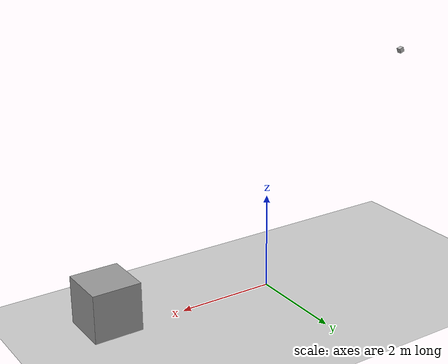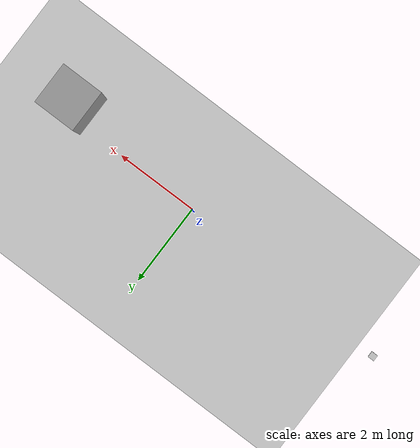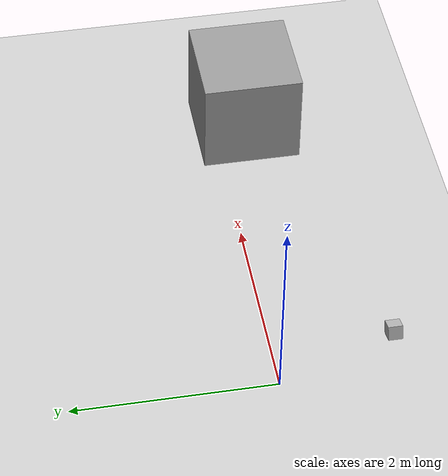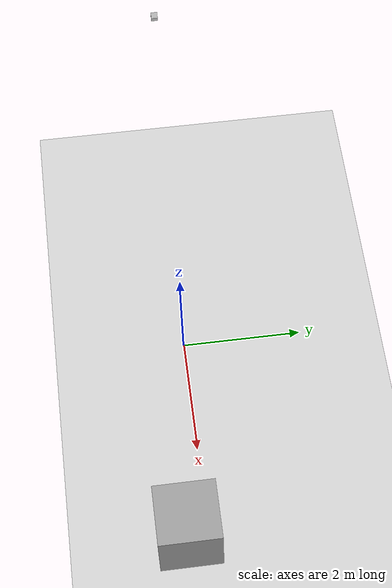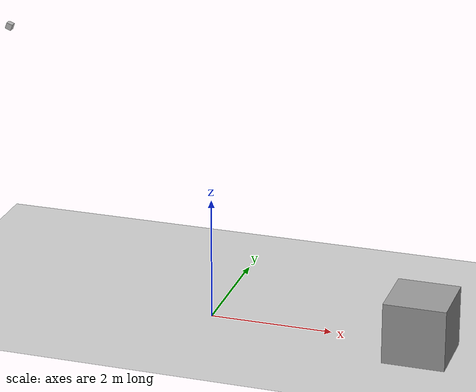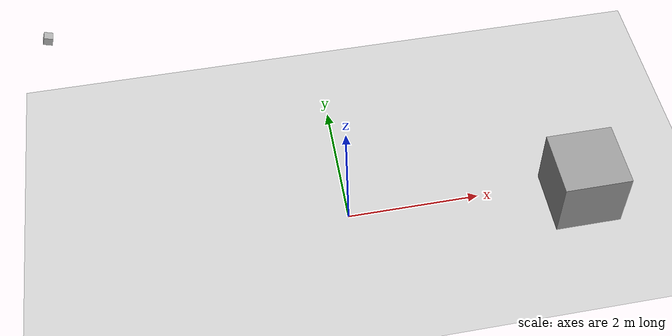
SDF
<?xml version="1.0" ?>
<sdf version="1.5">
  <world name="default">
    <!-- A global light source -->
    <include>
      <uri>model://sun</uri>
    </include>
    <!-- A ground plane -->
    <include>
      <uri>model://ground_plane</uri>
    </include>

    <model name='unit_box'>
      <static>true</static>
      <pose>3.52083 -0.309833 0.5 0 -0 0</pose>
      <link name='link'>
        <collision name='collision'>
          <geometry>
            <box>
              <size>1 1 1</size>
            </box>
          </geometry>
        </collision>
        <visual name='visual'>
          <geometry>
            <box>
              <size>1 1 1</size>
            </box>
          </geometry>
          <material>
            <script>
              <name>Gazebo/Grey</name>
              <uri>file://media/materials/scripts/gazebo.material</uri>
            </script>
          </material>
        </visual>
      </link>
    </model>

    <model name="camera">
      <static>true</static>
      <pose>-3.42659 0 4.51772 0 0.336848 0</pose>
      <link name="link">
        <pose>0.05 0.05 0.05 0 0 0</pose>
        <inertial>
          <mass>0.1</mass>
        </inertial>
        <collision name="collision">
          <geometry>
            <box>
              <size>0.1 0.1 0.1</size>
            </box>
          </geometry>
        </collision>
        <visual name="visual">
          <geometry>
            <box>
              <size>0.1 0.1 0.1</size>
            </box>
          </geometry>
        </visual>
        <sensor name="camera" type="camera">
          <camera>
            <horizontal_fov>1.047</horizontal_fov>
            <image>
              <width>1280</width>
              <height>960</height>
            </image>
            <clip>
              <near>0.1</near>
              <far>100</far>
            </clip>
          </camera>
          <always_on>1</always_on>
          <update_rate>30</update_rate>
          <visualize>true</visualize>
          <plugin name="shadow" filename="libShadowPlugin.so">
            <shadow_texture_size>256</shadow_texture_size>
          </plugin>
        </sensor>
      </link>
    </model>

  </world>
</sdf>
